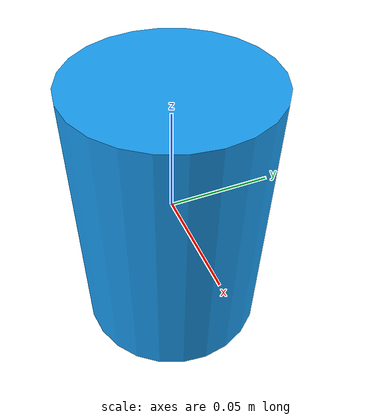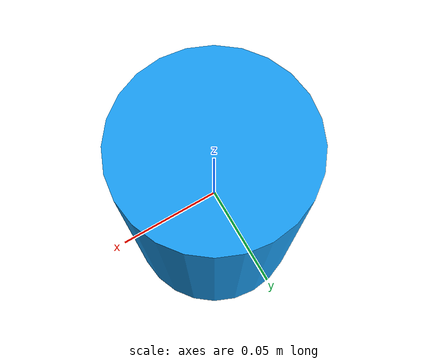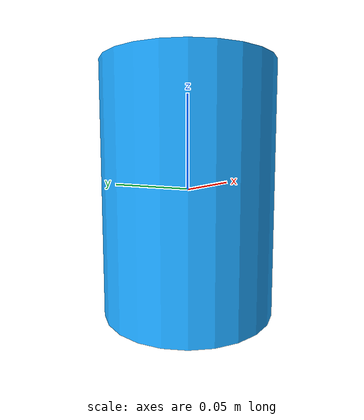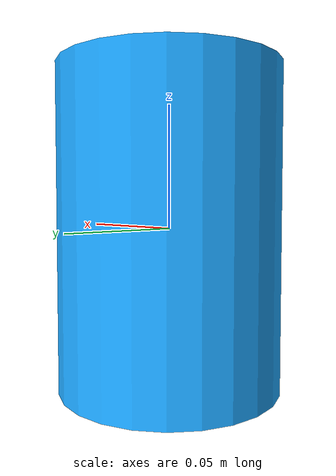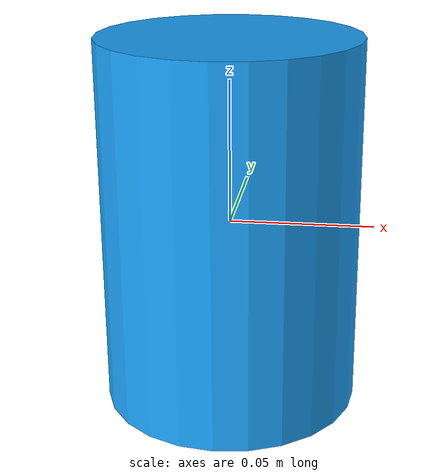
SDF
<?xml version="1.0"?>
<sdf version="1.8">
  <model name="pick_cylinder">
    <link name="cylinder">
      <inertial>
        <mass>0.15</mass>
        <inertia><ixx>0.00018</ixx><iyy>0.00018</iyy><izz>0.00008</izz></inertia>
      </inertial>
      <collision name="collision">
        <geometry><cylinder><radius>0.045</radius><length>0.13</length></cylinder></geometry>
        <surface><friction><ode><mu>0.9</mu><mu2>0.9</mu2></ode></friction></surface>
      </collision>
      <visual name="visual">
        <geometry><cylinder><radius>0.045</radius><length>0.13</length></cylinder></geometry>
        <material><ambient>0.08 0.45 0.72 1</ambient><diffuse>0.10 0.62 0.95 1</diffuse></material>
      </visual>
    </link>
  </model>
</sdf>
